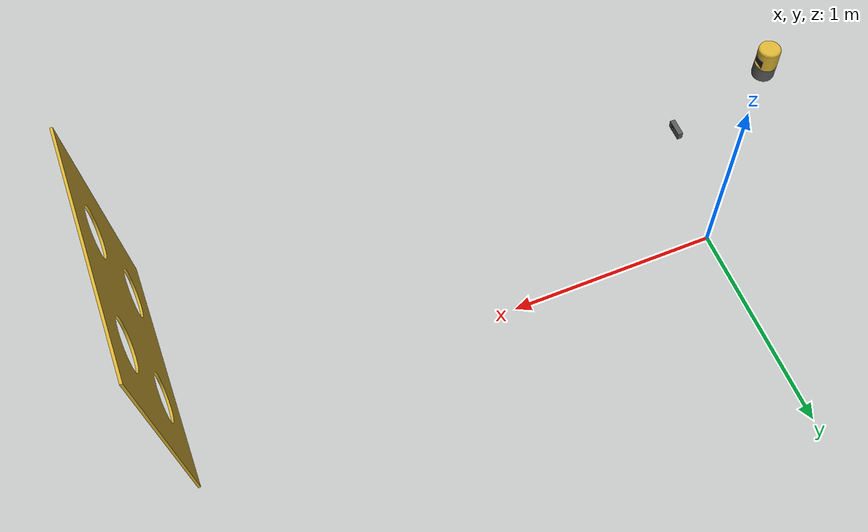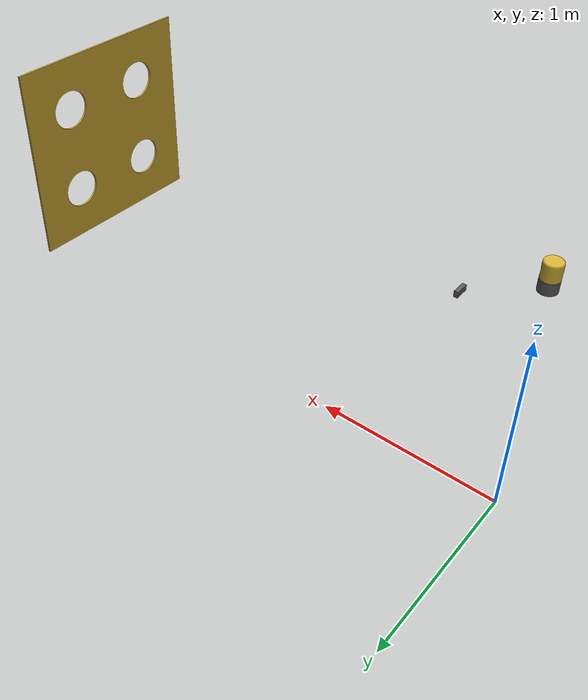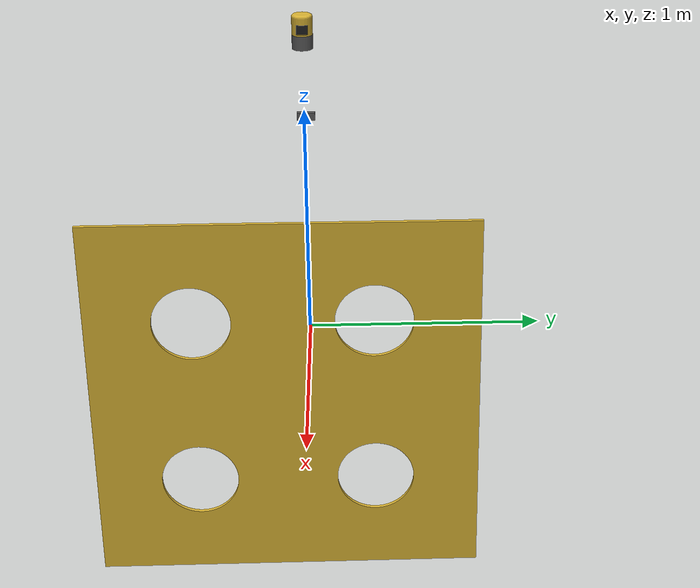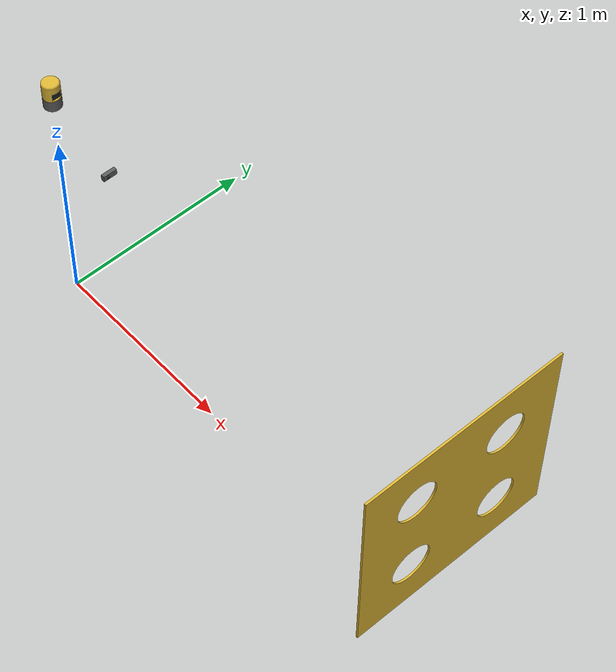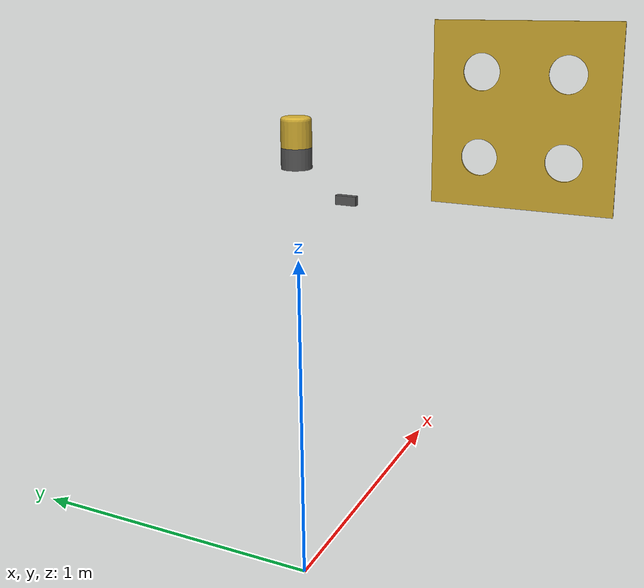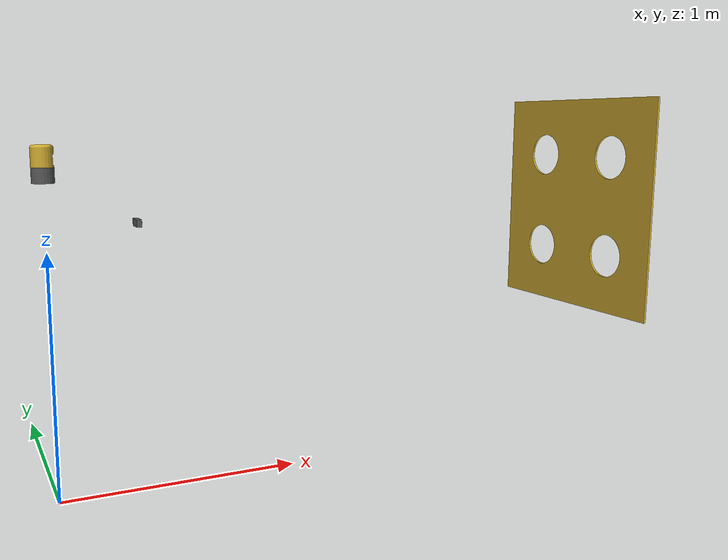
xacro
<?xml version="1.0"?>
<robot name="camera_velodyne" xmlns:xacro="http://ros.org/wiki/xacro">
	<!-- constants for robot dimentions  -->
	<xacro:property name="pi" value="3.141592"/>
	<xacro:property name="velodyne_height" value="1.35"/>
	<xacro:property name="camera_height" value="1.10"/>
	<xacro:property name="camera_depth" value="0.35"/>

	<xacro:property name="velodyne_base_length" value="0.0586740"/>
	<xacro:property name="velodyne_diameter" value="0.0853440"/>
	<xacro:property name="velodyne_top_length" value="0.0835714"/>
	<xacro:property name="velodyne_top_center" value="0.0069204"/>
	<xacro:property name="velodyne_laser_depth" value="0.03475311"/>
	<xacro:property name="velodyne_laser_height" value="0.0404979"/>
	<xacro:property name="velodyne_laser_width" value="0.0468099"/>

	<!-- inertial for box -->
	<xacro:macro
		name="default_box_inertial"
		params="mass depth width height x_offset y_offset z_offset">
		<inertial>
			<origin xyz="${x_offset} ${y_offset} ${z_offset}" rpy="0 0 0"/>
			<mass value="${mass}"/>
			<inertia
				ixx="1.0" ixy="0.0" ixz="0.0"
				iyy="1.0" iyz="0.0"
				izz="1.0"/>
		</inertial>
	</xacro:macro>

	<!-- inertial for cylinder -->
	<xacro:macro
		name="default_cylinder_inertial"
		params="mass length radius x_offset y_offset z_offset">
		<inertial>
			<origin xyz="${x_offset} ${y_offset} ${z_offset}" rpy="0 0 0"/>
			<mass value="${mass}"/>
			<inertia
				ixx="1.0" ixy="0.0" ixz="0.0"
				iyy="1.0" iyz="0.0"
				izz="1.0"/>
		</inertial>
	</xacro:macro>

	<!-- import Rviz color -->
	<xacro:include filename="$(find camera_velodyne_calibration_gazebo)/materials/materials.xacro"/>

	<!-- import all Gazebo-customization elements, including Gazebo colors -->
	<xacro:include filename="$(find camera_velodyne_calibration_gazebo)/urdf/camera_velodyne.gazebo.xacro"/>

	<link name="world"/>

	<joint name="fixed" type="fixed">
		<parent link="world"/>
		<child link="base_link"/>
		<origin xyz="0 0 0" rpy="0 0 0"/>
	</joint>

	<!-- camera velodyne model  -->
	<link name="base_link"/>

	<joint name="base2velodyne_base" type="fixed">
		<parent link="base_link"/>
		<child link="velodyne_base_link"/>
		<origin xyz="0 0 ${velodyne_height - (velodyne_base_length + (velodyne_top_center + (velodyne_laser_height/2)))}" rpy="0 0 0"/>
	</joint>

	<!-- velodyne -->
	<link name="velodyne_base_link">
		<visual>
			<geometry>
				<cylinder length="${velodyne_base_length}" radius="${velodyne_diameter/2}"/>
			</geometry>
			<origin xyz="0 0 ${velodyne_base_length/2}" rpy="0 0 0"/>
			<material name="darkgray"/>
		</visual>
		<collision>
			<geometry>
				<cylinder length="${velodyne_base_length}" radius="${velodyne_diameter/2}"/>
			</geometry>
			<origin xyz="0 0 ${velodyne_base_length/2}" rpy="0 0 0"/>
		</collision>
		<xacro:default_cylinder_inertial
			mass="1.0" length="${velodyne_base_length}" radius="${velodyne_diameter/2}"
			x_offset="0.0" y_offset="0.0" z_offset="${velodyne_base_length/2}"/>
	</link>

	<joint name="velodyne_top_joint" type="continuous">
		<parent link="velodyne_base_link"/>
		<child link="velodyne_top_link"/>
		<origin xyz="0 0 ${velodyne_base_length}" rpy="0 0 0"/>
		<axis xyz="0 0 1"/>
	</joint>

	<link name="velodyne_top_link">
		<visual>
			<geometry>
				<mesh filename="package://camera_velodyne_calibration_gazebo/meshes/velodyne_top.dae"/>
			</geometry>
			<origin xyz="0 0 0" rpy="${pi/2} 0 0"/>
		</visual>
		<collision>
			<geometry>
				<cylinder length="${velodyne_top_length}" radius="${velodyne_diameter/2}"/>
			</geometry>
			<origin xyz="0 0 ${velodyne_top_length/2}" rpy="0 0 0"/>
		</collision>
		<xacro:default_cylinder_inertial
			mass="0.0001" length="${velodyne_top_length}" radius="${velodyne_diameter/2}"
			x_offset="0.0" y_offset="0.0" z_offset="${velodyne_top_length/2}"/>
	</link>

	<joint name="velodyne_laser_joint" type="fixed">
		<parent link="velodyne_top_link"/>
		<child link="velodyne_laser_link"/>
		<origin xyz="0 0 ${(velodyne_top_center)+(velodyne_laser_height/2)}" rpy="0 0 0"/>
	</joint>

	<link name="velodyne_laser_link">
		<visual>
			<geometry>
				<box size="${velodyne_laser_depth} ${velodyne_laser_width} ${velodyne_laser_height}"/>
			</geometry>
			<origin xyz="${velodyne_laser_depth/2} 0 0" rpy="0 0 0"/>
			<material name="lase_black"/>
		</visual>
		<collision>
			<geometry>
				<box size="${velodyne_laser_depth} ${velodyne_laser_width} ${velodyne_laser_height}"/>
			</geometry>
			<origin xyz="${velodyne_laser_depth/2} 0 0" rpy="0 0 0"/>
		</collision>
		<xacro:default_box_inertial
			mass="0.0001"
			depth="${velodyne_laser_depth}"
			width="${velodyne_laser_width}"
			height="${velodyne_laser_height}"
			x_offset="${velodyne_laser_depth/2}"
			y_offset="0.0"
			z_offset="0.0"/>
	</link>

	<joint name="velodyne_base2velodyne_laser_core" type="fixed">
		<parent link="velodyne_base_link"/>
		<child link="velodyne_laser_core_link"/>
		<origin xyz="0 0 ${velodyne_base_length + (velodyne_top_center + (velodyne_laser_height/2))}" rpy="0 0 0"/>
	</joint>

	<link name="velodyne_laser_core_link"/>

	<!-- monocular camera -->
	<joint name="base2camera" type="fixed">
		<parent link="base_link"/>
		<child link="camera_base_link"/>
		<origin xyz="${camera_depth} 0.015 ${camera_height}" rpy="0 0 0"/>
	</joint>

	<link name="camera_base_link">
		<visual>
			<geometry>
				<box size="0.020 0.070 0.030"/>
			</geometry>
			<origin xyz="0 0 0" rpy="0 0 0"/>
			<material name="darkgray"/>
		</visual>
		<xacro:default_box_inertial
			mass="0.01"
			depth="0.020"
			width="0.070"
			height="0.030"
			x_offset="0.0"
			y_offset="0.0"
			z_offset="0.0"/>
	</link>

	<joint name="camera_base2lens" type="fixed">
		<parent link="camera_base_link"/>
		<child link="lens_link"/>
		<origin xyz="0 -0.015 0" rpy="0 0 0"/>
	</joint>

	<link name="lens_link">
		<visual>
			<geometry>
				<cylinder length="0.017" radius="0.010"/>
			</geometry>
			<origin xyz="0.005 0 0" rpy="0 ${pi/2} 0"/>
			<material name="laser_black"/>
		</visual>
		<xacro:default_cylinder_inertial
			mass="0.0001" length="0.017" radius="0.010"
			x_offset="0.005" y_offset="0.0" z_offset="0.0"/>
	</link>

	<!-- landmark  -->
	<joint name="base2landmark" type="fixed">
		<parent link="base_link"/>
		<child link="landmark_link"/>
		<origin xyz="2.5 0 ${camera_height}" rpy="0 0 0"/>
	</joint>

	<link name="landmark_link">
		<visual>
			<geometry>
				<mesh filename="package://camera_velodyne_calibration_gazebo/meshes/landmark.dae"/>
			</geometry>
			<origin xyz="0 0 0" rpy="0 ${pi/2} 0"/>
		</visual>
		<collision>
			<geometry>
				<mesh filename="package://camera_velodyne_calibration_gazebo/meshes/landmark.dae"/>
			</geometry>
			<origin xyz="0 0 0" rpy="0 ${pi/2} 0"/>
		</collision>
		<xacro:default_box_inertial
			mass="1.0"
			depth="0.010"
			width="1.000"
			height="1.000"
			x_offset="0.0"
			y_offset="0.0"
			z_offset="0.0"/>
	</link>

	<transmission name="velodyne_top_trans">
		<type>transmission_interface/SimpleTransmission</type>
		<joint name="velodyne_top_joint">
			<hardwareInterface>VelocityJointInterface</hardwareInterface>
		</joint>
		<actuator name="velodyne_top_motor">
			<hardwareInterface>VelocityJointInterface</hardwareInterface>
			<mechanicalReduction>1</mechanicalReduction>
		</actuator>
	</transmission>

</robot>

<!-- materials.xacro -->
<robot>

	<material name="white">
		<color rgba="1 1 1 1"/>
	</material>

	<material name="gray">
		<color rgba="0.4 0.4 0.4 1"/>
	</material>

	<material name="lightgray">
		<color rgba="0.45 0.45 0.45 1"/>
	</material>

	<material name="ivory">
		<color rgba="0.54 0.53 0.56 1"/>
	</material>

	<material name="darkgray">
		<color rgba="0.35 0.35 0.35 1"/>
	</material>

	<material name="black">
		<color rgba="0.2 0.2 0.2 1"/>
	</material>

	<material name="laser_black">
		<color rgba="0.1 0.1 0.1 0.0.6"/>
	</material>

	<material name="blue">
		<color rgba= "0 0 0.8 1"/>
	</material>

	<material name="red">
		<color rgba="0.8 0 0 1"/>
	</material>

	<material name="green">
		<color rgba="0 0.8 0 1"/>
	</material>

	<material name="yellow">
		<color rgba="0.8 0.8 0 1"/>
	</material>

	<material name="cyan">
		<color rgba="0 0.8 0.8 0.8"/>
	</material>

	<material name="purple">
		<color rgba="0.8 0 0.8 1"/>
	</material>
</robot>
